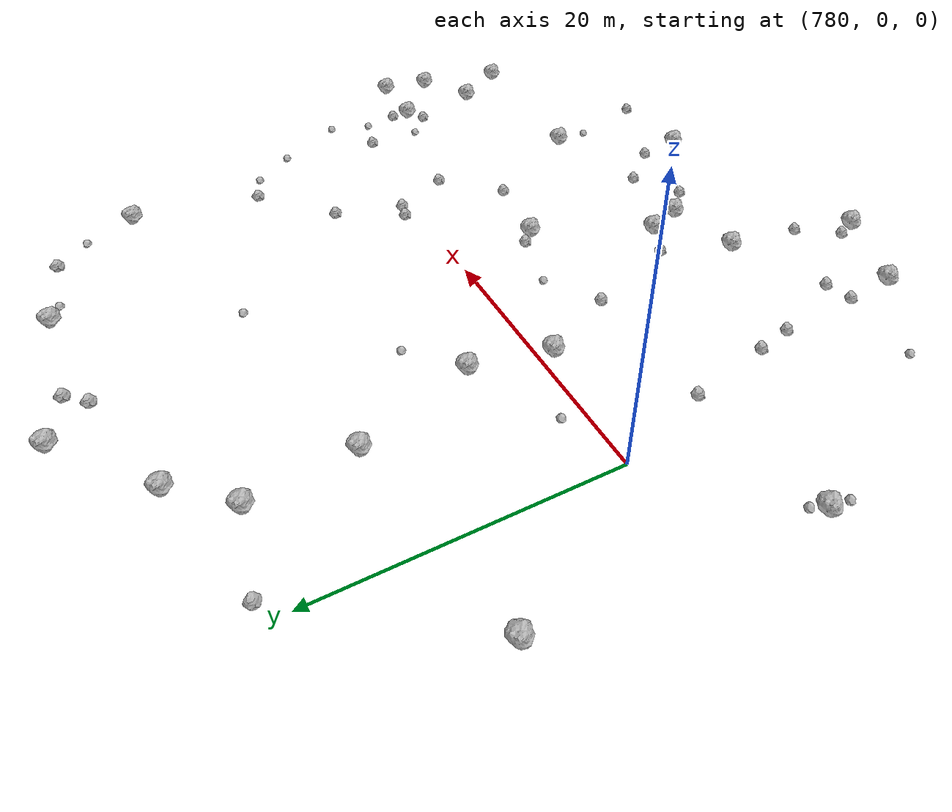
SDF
<sdf version="1.6">
 <world name="default">
  <include><uri>model://sun</uri></include>
  <model name="rock1_20_4">
   <include><uri>model://rock1</uri><pose>787.3854799532774 20.326109557839473 0.5 0 0 0</pose></include>
  </model>
  <model name="rock1_20_5">
   <include><uri>model://rock1</uri><pose>791.115368136871 4.508642465955091 0.5 0 0 0</pose></include>
  </model>
  <model name="rock1_20_6">
   <include><uri>model://rock1</uri><pose>789.9693921199365 -1.1624061701645658 0.5 0 0 0</pose></include>
  </model>
  <model name="rock1_20_7">
   <include><uri>model://rock1</uri><pose>797.8382771242631 -14.762691983325906 0.5 0 0 0</pose></include>
  </model>
  <model name="rock1_20_8">
   <include><uri>model://rock1</uri><pose>790.6149504975577 23.94713758604979 0.5 0 0 0</pose></include>
  </model>
  <model name="rock1_20_9">
   <include><uri>model://rock1</uri><pose>822.2929832787876 -5.649520818781653 0.5 0 0 0</pose></include>
  </model>
  <model name="rock1_20_10">
   <include><uri>model://rock1</uri><pose>825.229799409987 -15.842409701502099 0.5 0 0 0</pose></include>
  </model>
  <model name="rock1_20_11">
   <include><uri>model://rock1</uri><pose>772.375604882327 -7.899238216838025 0.5 0 0 0</pose></include>
  </model>
  <model name="rock1_20_12">
   <include><uri>model://rock1</uri><pose>826.6896352570513 -9.443921115624807 0.5 0 0 0</pose></include>
  </model>
  <model name="rock1_20_13">
   <include><uri>model://rock1</uri><pose>812.1334275416257 -15.250490101802841 0.5 0 0 0</pose></include>
  </model>
  <model name="rock1_20_14">
   <include><uri>model://rock1</uri><pose>798.8953047423505 -17.464598490316927 0.5 0 0 0</pose></include>
  </model>
  <model name="rock1_20_15">
   <include><uri>model://rock1</uri><pose>785.2551965260227 -25.745928011200768 0.5 0 0 0</pose></include>
  </model>
  <model name="rock1_20_16">
   <include><uri>model://rock1</uri><pose>773.5411515410976 10.81317151240161 0.5 0 0 0</pose></include>
  </model>
  <model name="rock1_20_17">
   <include><uri>model://rock1</uri><pose>788.1424649035185 13.084878096373188 0.5 0 0 0</pose></include>
  </model>
  <model name="rock1_20_18">
   <include><uri>model://rock1</uri><pose>817.2769753282802 19.645655392317245 0.5 0 0 0</pose></include>
  </model>
  <model name="rock1_20_19">
   <include><uri>model://rock1</uri><pose>827.2730447414724 -5.780077684087065 0.5 0 0 0</pose></include>
  </model>
  <model name="rock1_20_20">
   <include><uri>model://rock1</uri><pose>807.2132622362298 -23.652671768859626 0.5 0 0 0</pose></include>
  </model>
  <model name="rock1_20_21">
   <include><uri>model://rock1</uri><pose>791.3862404807904 -28.351375546650125 0.5 0 0 0</pose></include>
  </model>
  <model name="rock1_20_22">
   <include><uri>model://rock1</uri><pose>796.8517687404186 29.107407788885624 0.5 0 0 0</pose></include>
  </model>
  <model name="rock1_20_23">
   <include><uri>model://rock1</uri><pose>807.9306727751662 27.12196046471435 0.5 0 0 0</pose></include>
  </model>
  <model name="rock1_20_24">
   <include><uri>model://rock1</uri><pose>793.4766560675076 -18.587246234833888 0.5 0 0 0</pose></include>
  </model>
  <model name="rock1_20_25">
   <include><uri>model://rock1</uri><pose>801.8352780738802 -6.38654876317435 0.5 0 0 0</pose></include>
  </model>
  <model name="rock1_20_26">
   <include><uri>model://rock1</uri><pose>822.7755904218468 -11.870910017839403 0.5 0 0 0</pose></include>
  </model>
  <model name="rock2_20_0">
   <include><uri>model://rock2</uri><pose>810.9415122281073 -3.264941829841902 0.3 0 0 0</pose></include>
  </model>
  <model name="rock2_20_1">
   <include><uri>model://rock2</uri><pose>784.7310617831024 -21.815337640973876 0.3 0 0 0</pose></include>
  </model>
  <model name="rock2_20_2">
   <include><uri>model://rock2</uri><pose>806.5644446403157 -20.2974799115486 0.3 0 0 0</pose></include>
  </model>
  <model name="rock2_20_3">
   <include><uri>model://rock2</uri><pose>786.6253622234514 -21.36481755025214 0.3 0 0 0</pose></include>
  </model>
  <model name="rock2_20_4">
   <include><uri>model://rock2</uri><pose>807.8376888861443 1.1332185896530014 0.3 0 0 0</pose></include>
  </model>
  <model name="rock2_20_5">
   <include><uri>model://rock2</uri><pose>820.6745041548587 -6.471571216310284 0.3 0 0 0</pose></include>
  </model>
  <model name="rock2_20_6">
   <include><uri>model://rock2</uri><pose>783.6819967017077 -13.010133752426714 0.3 0 0 0</pose></include>
  </model>
  <model name="rock2_20_7">
   <include><uri>model://rock2</uri><pose>809.0439938048137 0.8348505207788257 0.3 0 0 0</pose></include>
  </model>
  <model name="rock2_20_8">
   <include><uri>model://rock2</uri><pose>782.3160405236615 -6.831124350839573 0.3 0 0 0</pose></include>
  </model>
  <model name="rock2_20_9">
   <include><uri>model://rock2</uri><pose>792.5871828000073 -23.911689421822423 0.3 0 0 0</pose></include>
  </model>
  <model name="rock2_20_10">
   <include><uri>model://rock2</uri><pose>800.6158571096852 -5.291717240831051 0.3 0 0 0</pose></include>
  </model>
  <model name="rock2_20_11">
   <include><uri>model://rock2</uri><pose>807.2152663172074 -7.107461108505866 0.3 0 0 0</pose></include>
  </model>
  <model name="rock2_20_12">
   <include><uri>model://rock2</uri><pose>800.5929470206105 -19.32864548582315 0.3 0 0 0</pose></include>
  </model>
  <model name="rock2_20_13">
   <include><uri>model://rock2</uri><pose>795.1361850476113 -13.464517204382553 0.3 0 0 0</pose></include>
  </model>
  <model name="rock2_20_14">
   <include><uri>model://rock2</uri><pose>822.048229454407 -4.187068753256494 0.3 0 0 0</pose></include>
  </model>
  <model name="rock2_20_15">
   <include><uri>model://rock2</uri><pose>792.4911306458513 -6.552720098736206 0.3 0 0 0</pose></include>
  </model>
  <model name="rock2_20_16">
   <include><uri>model://rock2</uri><pose>813.4893850586903 -23.284951764663003 0.3 0 0 0</pose></include>
  </model>
  <model name="rock2_20_17">
   <include><uri>model://rock2</uri><pose>813.5612082148153 25.728773894888462 0.3 0 0 0</pose></include>
  </model>
  <model name="rock2_20_18">
   <include><uri>model://rock2</uri><pose>790.6099005751785 -26.716928669492496 0.3 0 0 0</pose></include>
  </model>
  <model name="rock2_20_19">
   <include><uri>model://rock2</uri><pose>818.7247728130214 -0.7991615659259175 0.3 0 0 0</pose></include>
  </model>
  <model name="rock2_20_20">
   <include><uri>model://rock2</uri><pose>803.9219862994983 -17.272574586354086 0.3 0 0 0</pose></include>
  </model>
  <model name="rock2_20_21">
   <include><uri>model://rock2</uri><pose>781.2661737462913 21.590377668028694 0.3 0 0 0</pose></include>
  </model>
  <model name="rock2_20_22">
   <include><uri>model://rock2</uri><pose>815.4713028029491 10.299563051176094 0.3 0 0 0</pose></include>
  </model>
  <model name="rock2_20_23">
   <include><uri>model://rock2</uri><pose>810.4889568142952 5.774474896662397 0.3 0 0 0</pose></include>
  </model>
  <model name="rock2_20_24">
   <include><uri>model://rock2</uri><pose>798.9674264841685 26.226062513727207 0.3 0 0 0</pose></include>
  </model>
  <model name="rock2_20_25">
   <include><uri>model://rock2</uri><pose>784.2937518413981 -15.689844457995594 0.3 0 0 0</pose></include>
  </model>
  <model name="rock2_20_26">
   <include><uri>model://rock2</uri><pose>800.199149274442 27.57693523613132 0.3 0 0 0</pose></include>
  </model>
  <model name="rock3_20_0">
   <include><uri>model://rock3</uri><pose>778.9185242043549 -21.195317848422008 0.2 0 0 0</pose></include>
  </model>
  <model name="rock3_20_1">
   <include><uri>model://rock3</uri><pose>784.5677662395573 1.524956686252338 0.2 0 0 0</pose></include>
  </model>
  <model name="rock3_20_2">
   <include><uri>model://rock3</uri><pose>796.1995951798767 -4.22200079556071 0.2 0 0 0</pose></include>
  </model>
  <model name="rock3_20_3">
   <include><uri>model://rock3</uri><pose>818.7687658539675 -4.841727405147363 0.2 0 0 0</pose></include>
  </model>
  <model name="rock3_20_4">
   <include><uri>model://rock3</uri><pose>819.8278120461725 6.393035584229267 0.2 0 0 0</pose></include>
  </model>
  <model name="rock3_20_5">
   <include><uri>model://rock3</uri><pose>772.1168079960667 -9.310547935221976 0.2 0 0 0</pose></include>
  </model>
  <model name="rock3_20_6">
   <include><uri>model://rock3</uri><pose>821.5792645260251 -1.6401855297573356 0.2 0 0 0</pose></include>
  </model>
  <model name="rock3_20_7">
   <include><uri>model://rock3</uri><pose>794.3223887062121 7.553045447041711 0.2 0 0 0</pose></include>
  </model>
  <model name="rock3_20_8">
   <include><uri>model://rock3</uri><pose>802.5996397488648 15.461074751353266 0.2 0 0 0</pose></include>
  </model>
  <model name="rock3_20_9">
   <include><uri>model://rock3</uri><pose>822.5405879588718 1.3798666662225543 0.2 0 0 0</pose></include>
  </model>
  <model name="rock3_20_10">
   <include><uri>model://rock3</uri><pose>811.8625467849992 -17.661385910144453 0.2 0 0 0</pose></include>
  </model>
  <model name="rock3_20_11">
   <include><uri>model://rock3</uri><pose>815.4291115365802 23.310942845011425 0.2 0 0 0</pose></include>
  </model>
  <model name="rock3_20_12">
   <include><uri>model://rock3</uri><pose>809.052334750539 26.288611985785707 0.2 0 0 0</pose></include>
  </model>
  <model name="rock3_20_13">
   <include><uri>model://rock3</uri><pose>817.6795863533775 9.41832218043767 0.2 0 0 0</pose></include>
  </model>
  <model name="rock3_20_14">
   <include><uri>model://rock3</uri><pose>772.7833609590162 -6.964742471345716 0.2 0 0 0</pose></include>
  </model>
 </world>
</sdf>
